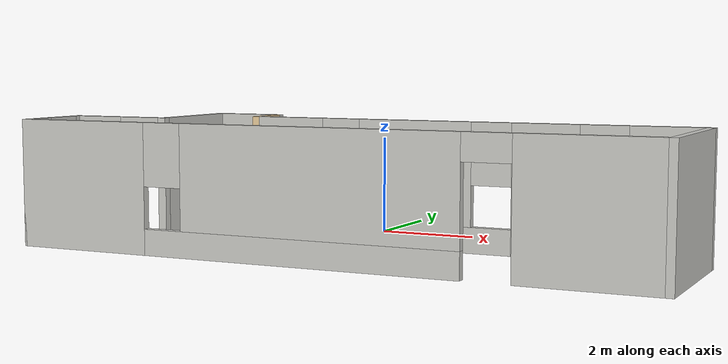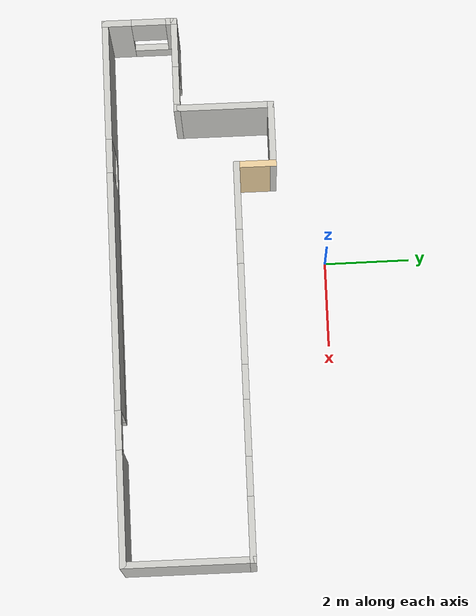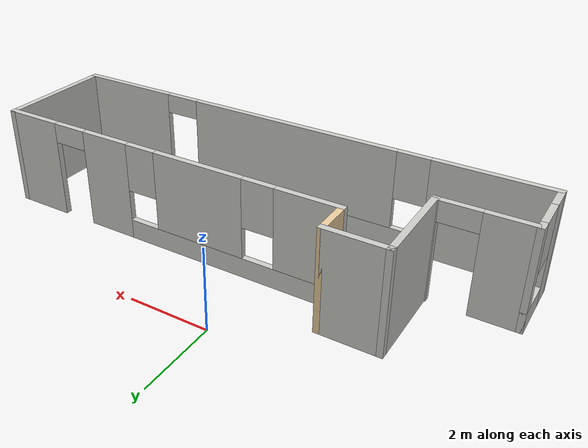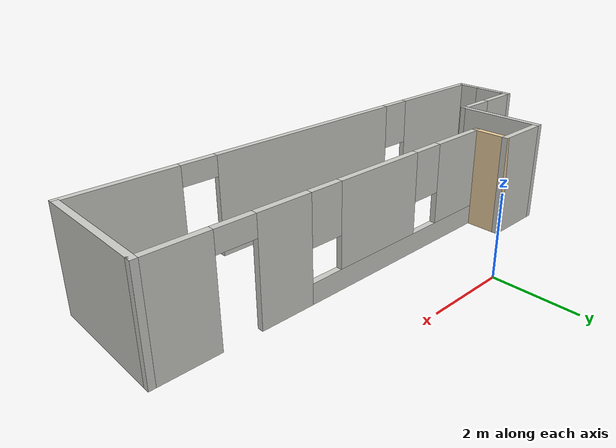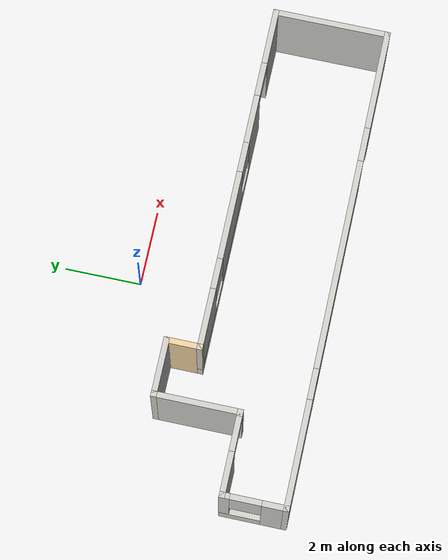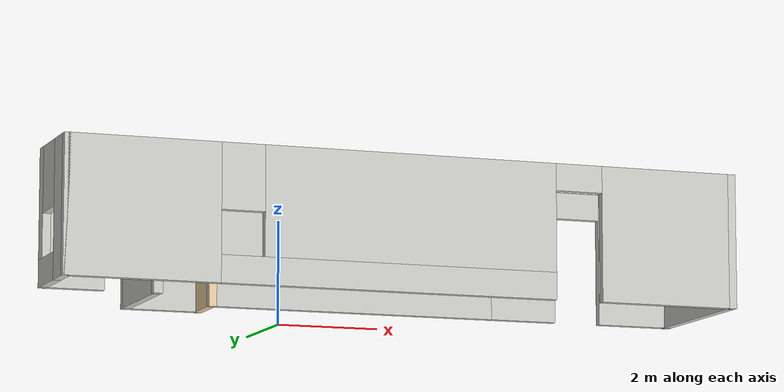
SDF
<?xml version='1.0'?>
<sdf version='1.7'>
  <model name='model'>
    <pose>0.88 -2.50254 0 0 -0 0</pose>
    <link name='Wall_1'>
      <pose>0 -2.42746 0 0 -0 0</pose>
      <visual name='Wall_1_Visual_0'>
        <pose>-4.9525 0 1.25 0 -0 0</pose>
        <geometry>
          <box>
            <size>2.845 0.15 2.5</size>
          </box>
        </geometry>
        <material>
          <script>
            <uri>file://media/materials/scripts/gazebo.material</uri>
            <name>Gazebo/CeilingTiled</name>
          </script>
          <ambient>0.921569 0.807843 0.615686 1</ambient>
        </material>
        <meta>
          <layer>0</layer>
        </meta>
      </visual>
      <collision name='Wall_1_Collision_0'>
        <geometry>
          <box>
            <size>2.845 0.15 2.5</size>
          </box>
        </geometry>
        <pose>-4.9525 0 1.25 0 -0 0</pose>
      </collision>
      <visual name='Wall_1_Visual_1'>
        <pose>5.0375 0 1.25 0 -0 0</pose>
        <geometry>
          <box>
            <size>2.675 0.15 2.5</size>
          </box>
        </geometry>
        <material>
          <script>
            <uri>file://media/materials/scripts/gazebo.material</uri>
            <name>Gazebo/CeilingTiled</name>
          </script>
          <ambient>0.921569 0.807843 0.615686 1</ambient>
        </material>
        <meta>
          <layer>0</layer>
        </meta>
      </visual>
      <collision name='Wall_1_Collision_1'>
        <geometry>
          <box>
            <size>2.675 0.15 2.5</size>
          </box>
        </geometry>
        <pose>5.0375 0 1.25 0 -0 0</pose>
      </collision>
      <visual name='Wall_1_Visual_2'>
        <pose>-0.365 0 0.25 0 -0 0</pose>
        <geometry>
          <box>
            <size>6.33 0.15 0.5</size>
          </box>
        </geometry>
        <material>
          <script>
            <uri>file://media/materials/scripts/gazebo.material</uri>
            <name>Gazebo/CeilingTiled</name>
          </script>
          <ambient>0.921569 0.807843 0.615686 1</ambient>
        </material>
        <meta>
          <layer>0</layer>
        </meta>
      </visual>
      <collision name='Wall_1_Collision_2'>
        <geometry>
          <box>
            <size>6.33 0.15 0.5</size>
          </box>
        </geometry>
        <pose>-0.365 0 0.25 0 -0 0</pose>
      </collision>
      <visual name='Wall_1_Visual_3'>
        <pose>0.035 0 1.5 0 -0 0</pose>
        <geometry>
          <box>
            <size>5.53 0.15 2</size>
          </box>
        </geometry>
        <material>
          <script>
            <uri>file://media/materials/scripts/gazebo.material</uri>
            <name>Gazebo/CeilingTiled</name>
          </script>
          <ambient>0.921569 0.807843 0.615686 1</ambient>
        </material>
        <meta>
          <layer>0</layer>
        </meta>
      </visual>
      <collision name='Wall_1_Collision_3'>
        <geometry>
          <box>
            <size>5.53 0.15 2</size>
          </box>
        </geometry>
        <pose>0.035 0 1.5 0 -0 0</pose>
      </collision>
      <visual name='Wall_1_Visual_4'>
        <pose>-3.13 0 1.9 0 -0 0</pose>
        <geometry>
          <box>
            <size>0.8 0.15 1.2</size>
          </box>
        </geometry>
        <material>
          <script>
            <uri>file://media/materials/scripts/gazebo.material</uri>
            <name>Gazebo/CeilingTiled</name>
          </script>
          <ambient>0.921569 0.807843 0.615686 1</ambient>
        </material>
        <meta>
          <layer>0</layer>
        </meta>
      </visual>
      <collision name='Wall_1_Collision_4'>
        <geometry>
          <box>
            <size>0.8 0.15 1.2</size>
          </box>
        </geometry>
        <pose>-3.13 0 1.9 0 -0 0</pose>
      </collision>
      <visual name='Wall_1_Visual_5'>
        <pose>3.25 0 2.25 0 -0 0</pose>
        <geometry>
          <box>
            <size>0.9 0.15 0.5</size>
          </box>
        </geometry>
        <material>
          <script>
            <uri>file://media/materials/scripts/gazebo.material</uri>
            <name>Gazebo/CeilingTiled</name>
          </script>
          <ambient>0.921569 0.807843 0.615686 1</ambient>
        </material>
        <meta>
          <layer>0</layer>
        </meta>
      </visual>
      <collision name='Wall_1_Collision_5'>
        <geometry>
          <box>
            <size>0.9 0.15 0.5</size>
          </box>
        </geometry>
        <pose>3.25 0 2.25 0 -0 0</pose>
      </collision>
    </link>
    <link name='Wall_10'>
      <collision name='Wall_10_Collision'>
        <geometry>
          <box>
            <size>2.25009 0.15 2.5</size>
          </box>
        </geometry>
        <pose>0 0 1.25 0 -0 0</pose>
      </collision>
      <visual name='Wall_10_Visual'>
        <pose>0 0 1.25 0 -0 0</pose>
        <geometry>
          <box>
            <size>2.25009 0.15 2.5</size>
          </box>
        </geometry>
        <material>
          <script>
            <uri>file://media/materials/scripts/gazebo.material</uri>
            <name>Gazebo/CeilingTiled</name>
          </script>
          <ambient>0.921569 0.807843 0.615686 1</ambient>
        </material>
        <meta>
          <layer>0</layer>
        </meta>
      </visual>
      <pose>-4.2 0.292539 0 0 -0 -1.5708</pose>
    </link>
    <link name='Wall_16'>
      <pose>-6.3 -1.62746 0 0 -0 1.5708</pose>
      <visual name='Wall_16_Visual_0'>
        <pose>-0.5325 0 1.25 0 -0 0</pose>
        <geometry>
          <box>
            <size>0.685 0.15 2.5</size>
          </box>
        </geometry>
        <material>
          <script>
            <uri>file://media/materials/scripts/gazebo.material</uri>
            <name>Gazebo/CeilingTiled</name>
          </script>
          <ambient>0.921569 0.807843 0.615686 1</ambient>
        </material>
        <meta>
          <layer>0</layer>
        </meta>
      </visual>
      <collision name='Wall_16_Collision_0'>
        <geometry>
          <box>
            <size>0.685 0.15 2.5</size>
          </box>
        </geometry>
        <pose>-0.5325 0 1.25 0 -0 0</pose>
      </collision>
      <visual name='Wall_16_Visual_1'>
        <pose>0.3425 0 0.25 0 -0 0</pose>
        <geometry>
          <box>
            <size>1.065 0.15 0.5</size>
          </box>
        </geometry>
        <material>
          <script>
            <uri>file://media/materials/scripts/gazebo.material</uri>
            <name>Gazebo/CeilingTiled</name>
          </script>
          <ambient>0.921569 0.807843 0.615686 1</ambient>
        </material>
        <meta>
          <layer>0</layer>
        </meta>
      </visual>
      <collision name='Wall_16_Collision_1'>
        <geometry>
          <box>
            <size>1.065 0.15 0.5</size>
          </box>
        </geometry>
        <pose>0.3425 0 0.25 0 -0 0</pose>
      </collision>
      <visual name='Wall_16_Visual_2'>
        <pose>0.7425 0 1.5 0 -0 0</pose>
        <geometry>
          <box>
            <size>0.265 0.15 2</size>
          </box>
        </geometry>
        <material>
          <script>
            <uri>file://media/materials/scripts/gazebo.material</uri>
            <name>Gazebo/CeilingTiled</name>
          </script>
          <ambient>0.921569 0.807843 0.615686 1</ambient>
        </material>
        <meta>
          <layer>0</layer>
        </meta>
      </visual>
      <collision name='Wall_16_Collision_2'>
        <geometry>
          <box>
            <size>0.265 0.15 2</size>
          </box>
        </geometry>
        <pose>0.7425 0 1.5 0 -0 0</pose>
      </collision>
      <visual name='Wall_16_Visual_3'>
        <pose>0.21 0 1.9 0 -0 0</pose>
        <geometry>
          <box>
            <size>0.8 0.15 1.2</size>
          </box>
        </geometry>
        <material>
          <script>
            <uri>file://media/materials/scripts/gazebo.material</uri>
            <name>Gazebo/CeilingTiled</name>
          </script>
          <ambient>0.921569 0.807843 0.615686 1</ambient>
        </material>
        <meta>
          <layer>0</layer>
        </meta>
      </visual>
      <collision name='Wall_16_Collision_3'>
        <geometry>
          <box>
            <size>0.8 0.15 1.2</size>
          </box>
        </geometry>
        <pose>0.21 0 1.9 0 -0 0</pose>
      </collision>
    </link>
    <link name='Wall_17'>
      <pose>-5.25 -0.827461 0 0 -0 0</pose>
      <visual name='Wall_17_Visual_0'>
        <pose>-0.5375 0 1.25 0 -0 0</pose>
        <geometry>
          <box>
            <size>1.175 0.15 2.5</size>
          </box>
        </geometry>
        <material>
          <script>
            <uri>file://media/materials/scripts/gazebo.material</uri>
            <name>Gazebo/CeilingTiled</name>
          </script>
          <ambient>0.921569 0.807843 0.615686 1</ambient>
        </material>
        <meta>
          <layer>0</layer>
        </meta>
      </visual>
      <collision name='Wall_17_Collision_0'>
        <geometry>
          <box>
            <size>1.175 0.15 2.5</size>
          </box>
        </geometry>
        <pose>-0.5375 0 1.25 0 -0 0</pose>
      </collision>
      <visual name='Wall_17_Visual_1'>
        <pose>1.0375 0 1.25 0 -0 0</pose>
        <geometry>
          <box>
            <size>0.175 0.15 2.5</size>
          </box>
        </geometry>
        <material>
          <script>
            <uri>file://media/materials/scripts/gazebo.material</uri>
            <name>Gazebo/CeilingTiled</name>
          </script>
          <ambient>0.921569 0.807843 0.615686 1</ambient>
        </material>
        <meta>
          <layer>0</layer>
        </meta>
      </visual>
      <collision name='Wall_17_Collision_1'>
        <geometry>
          <box>
            <size>0.175 0.15 2.5</size>
          </box>
        </geometry>
        <pose>1.0375 0 1.25 0 -0 0</pose>
      </collision>
      <visual name='Wall_17_Visual_2'>
        <pose>0.5 0 2.25 0 -0 0</pose>
        <geometry>
          <box>
            <size>0.9 0.15 0.5</size>
          </box>
        </geometry>
        <material>
          <script>
            <uri>file://media/materials/scripts/gazebo.material</uri>
            <name>Gazebo/CeilingTiled</name>
          </script>
          <ambient>0.921569 0.807843 0.615686 1</ambient>
        </material>
        <meta>
          <layer>0</layer>
        </meta>
      </visual>
      <collision name='Wall_17_Collision_2'>
        <geometry>
          <box>
            <size>0.9 0.15 0.5</size>
          </box>
        </geometry>
        <pose>0.5 0 2.25 0 -0 0</pose>
      </collision>
    </link>
    <link name='Wall_2'>
      <collision name='Wall_2_Collision'>
        <geometry>
          <box>
            <size>3.07015 0.15 2.5</size>
          </box>
        </geometry>
        <pose>0 0 1.25 0 -0 0</pose>
      </collision>
      <visual name='Wall_2_Visual'>
        <pose>0 0 1.25 0 -0 0</pose>
        <geometry>
          <box>
            <size>3.07015 0.15 2.5</size>
          </box>
        </geometry>
        <material>
          <script>
            <uri>file://media/materials/scripts/gazebo.material</uri>
            <name>Gazebo/CeilingTiled</name>
          </script>
          <ambient>0.921569 0.807843 0.615686 1</ambient>
        </material>
        <meta>
          <layer>0</layer>
        </meta>
      </visual>
      <pose>6.3 -0.967461 0 0 -0 1.5708</pose>
    </link>
    <link name='Wall_7'>
      <pose>1.75 0.492539 0 0 -0 3.14159</pose>
      <visual name='Wall_7_Visual_0'>
        <pose>-3.8725 0 1.25 0 -0 0</pose>
        <geometry>
          <box>
            <size>1.505 0.15 2.5</size>
          </box>
        </geometry>
        <material>
          <script>
            <uri>file://media/materials/scripts/gazebo.material</uri>
            <name>Gazebo/CeilingTiled</name>
          </script>
          <ambient>0.921569 0.807843 0.615686 1</ambient>
        </material>
        <meta>
          <layer>0</layer>
        </meta>
      </visual>
      <collision name='Wall_7_Collision_0'>
        <geometry>
          <box>
            <size>1.505 0.15 2.5</size>
          </box>
        </geometry>
        <pose>-3.8725 0 1.25 0 -0 0</pose>
      </collision>
      <visual name='Wall_7_Visual_1'>
        <pose>-1.57 0 1.25 0 -0 0</pose>
        <geometry>
          <box>
            <size>1.3 0.15 2.5</size>
          </box>
        </geometry>
        <material>
          <script>
            <uri>file://media/materials/scripts/gazebo.material</uri>
            <name>Gazebo/CeilingTiled</name>
          </script>
          <ambient>0.921569 0.807843 0.615686 1</ambient>
        </material>
        <meta>
          <layer>0</layer>
        </meta>
      </visual>
      <collision name='Wall_7_Collision_1'>
        <geometry>
          <box>
            <size>1.3 0.15 2.5</size>
          </box>
        </geometry>
        <pose>-1.57 0 1.25 0 -0 0</pose>
      </collision>
      <visual name='Wall_7_Visual_2'>
        <pose>1.8525 0 0.25 0 -0 0</pose>
        <geometry>
          <box>
            <size>5.545 0.15 0.5</size>
          </box>
        </geometry>
        <material>
          <script>
            <uri>file://media/materials/scripts/gazebo.material</uri>
            <name>Gazebo/CeilingTiled</name>
          </script>
          <ambient>0.921569 0.807843 0.615686 1</ambient>
        </material>
        <meta>
          <layer>0</layer>
        </meta>
      </visual>
      <collision name='Wall_7_Collision_2'>
        <geometry>
          <box>
            <size>5.545 0.15 0.5</size>
          </box>
        </geometry>
        <pose>1.8525 0 0.25 0 -0 0</pose>
      </collision>
      <visual name='Wall_7_Visual_3'>
        <pose>1.05 0 1.5 0 -0 0</pose>
        <geometry>
          <box>
            <size>2.34 0.15 2</size>
          </box>
        </geometry>
        <material>
          <script>
            <uri>file://media/materials/scripts/gazebo.material</uri>
            <name>Gazebo/CeilingTiled</name>
          </script>
          <ambient>0.921569 0.807843 0.615686 1</ambient>
        </material>
        <meta>
          <layer>0</layer>
        </meta>
      </visual>
      <collision name='Wall_7_Collision_3'>
        <geometry>
          <box>
            <size>2.34 0.15 2</size>
          </box>
        </geometry>
        <pose>1.05 0 1.5 0 -0 0</pose>
      </collision>
      <visual name='Wall_7_Visual_4'>
        <pose>3.8225 0 1.5 0 -0 0</pose>
        <geometry>
          <box>
            <size>1.605 0.15 2</size>
          </box>
        </geometry>
        <material>
          <script>
            <uri>file://media/materials/scripts/gazebo.material</uri>
            <name>Gazebo/CeilingTiled</name>
          </script>
          <ambient>0.921569 0.807843 0.615686 1</ambient>
        </material>
        <meta>
          <layer>0</layer>
        </meta>
      </visual>
      <collision name='Wall_7_Collision_4'>
        <geometry>
          <box>
            <size>1.605 0.15 2</size>
          </box>
        </geometry>
        <pose>3.8225 0 1.5 0 -0 0</pose>
      </collision>
      <visual name='Wall_7_Visual_5'>
        <pose>-0.52 0 1.9 0 -0 0</pose>
        <geometry>
          <box>
            <size>0.8 0.15 1.2</size>
          </box>
        </geometry>
        <material>
          <script>
            <uri>file://media/materials/scripts/gazebo.material</uri>
            <name>Gazebo/CeilingTiled</name>
          </script>
          <ambient>0.921569 0.807843 0.615686 1</ambient>
        </material>
        <meta>
          <layer>0</layer>
        </meta>
      </visual>
      <collision name='Wall_7_Collision_5'>
        <geometry>
          <box>
            <size>0.8 0.15 1.2</size>
          </box>
        </geometry>
        <pose>-0.52 0 1.9 0 -0 0</pose>
      </collision>
      <visual name='Wall_7_Visual_6'>
        <pose>2.62 0 1.9 0 -0 0</pose>
        <geometry>
          <box>
            <size>0.8 0.15 1.2</size>
          </box>
        </geometry>
        <material>
          <script>
            <uri>file://media/materials/scripts/gazebo.material</uri>
            <name>Gazebo/CeilingTiled</name>
          </script>
          <ambient>0.921569 0.807843 0.615686 1</ambient>
        </material>
        <meta>
          <layer>0</layer>
        </meta>
      </visual>
      <collision name='Wall_7_Collision_6'>
        <geometry>
          <box>
            <size>0.8 0.15 1.2</size>
          </box>
        </geometry>
        <pose>2.62 0 1.9 0 -0 0</pose>
      </collision>
      <visual name='Wall_7_Visual_7'>
        <pose>-2.67 0 2.25 0 -0 0</pose>
        <geometry>
          <box>
            <size>0.9 0.15 0.5</size>
          </box>
        </geometry>
        <material>
          <script>
            <uri>file://media/materials/scripts/gazebo.material</uri>
            <name>Gazebo/CeilingTiled</name>
          </script>
          <ambient>0.921569 0.807843 0.615686 1</ambient>
        </material>
        <meta>
          <layer>0</layer>
        </meta>
      </visual>
      <collision name='Wall_7_Collision_7'>
        <geometry>
          <box>
            <size>0.9 0.15 0.5</size>
          </box>
        </geometry>
        <pose>-2.67 0 2.25 0 -0 0</pose>
      </collision>
    </link>
    <link name='Wall_8'>
      <collision name='Wall_8_Collision'>
        <geometry>
          <box>
            <size>1 0.15 2.5</size>
          </box>
        </geometry>
        <pose>0 0 1.25 0 -0 0</pose>
      </collision>
      <visual name='Wall_8_Visual'>
        <pose>0 0 1.25 0 -0 0</pose>
        <geometry>
          <box>
            <size>1 0.15 2.5</size>
          </box>
        </geometry>
        <material>
          <script>
            <uri>file://media/materials/scripts/gazebo.material</uri>
            <name>Gazebo/Grey</name>
          </script>
          <ambient>0.921569 0.807843 0.615686 1</ambient>
        </material>
        <meta>
          <layer>0</layer>
        </meta>
      </visual>
      <pose>-2.8 0.917539 0 0 -0 1.5708</pose>
    </link>
    <link name='Wall_9'>
      <collision name='Wall_9_Collision'>
        <geometry>
          <box>
            <size>1.55 0.15 2.5</size>
          </box>
        </geometry>
        <pose>0 0 1.25 0 -0 0</pose>
      </collision>
      <visual name='Wall_9_Visual'>
        <pose>0 0 1.25 0 -0 0</pose>
        <geometry>
          <box>
            <size>1.55 0.15 2.5</size>
          </box>
        </geometry>
        <material>
          <script>
            <uri>file://media/materials/scripts/gazebo.material</uri>
            <name>Gazebo/CeilingTiled</name>
          </script>
          <ambient>1 1 1 1</ambient>
        </material>
        <meta>
          <layer>0</layer>
        </meta>
      </visual>
      <pose>-3.5 1.34254 0 0 -0 3.14159</pose>
    </link>
    <static>1</static>
  </model>
</sdf>
